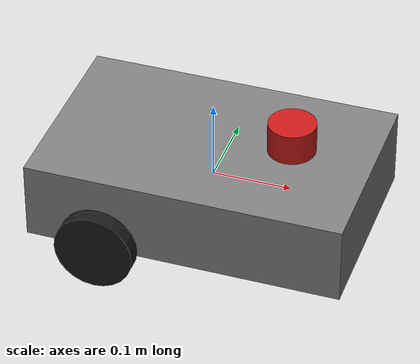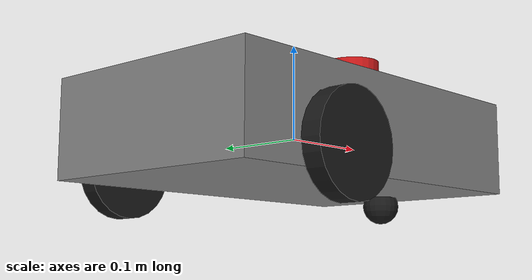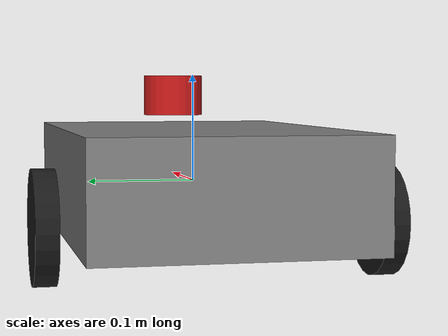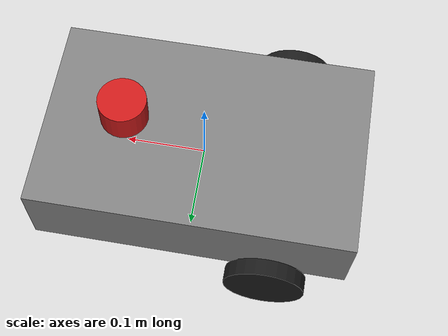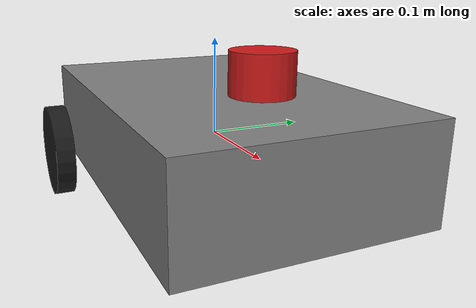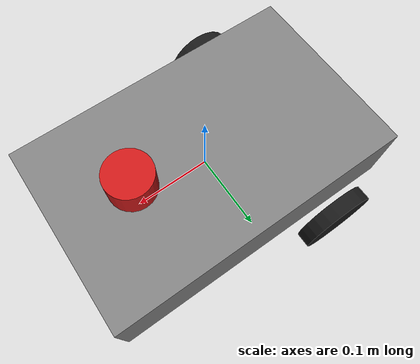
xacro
<?xml version="1.0"?>
<robot xmlns:xacro="http://www.ros.org/wiki/xacro" name="telebot">

  <!-- geometry constants in one place so wheel_separation below never drifts from the joints -->
  <xacro:property name="wheel_radius" value="0.05"/>
  <xacro:property name="wheel_width"  value="0.02"/>
  <xacro:property name="wheel_sep"    value="0.30"/>
  <xacro:property name="body_len"     value="0.40"/>
  <xacro:property name="body_wid"     value="0.25"/>
  <xacro:property name="body_hgt"     value="0.10"/>

  <material name="grey"><color rgba="0.5 0.5 0.5 1"/></material>
  <material name="black"><color rgba="0.1 0.1 0.1 1"/></material>
  <material name="red"><color rgba="0.8 0.1 0.1 1"/></material>

  <!-- ===================== base ===================== -->
  <link name="base_link">
    <visual>
      <geometry><box size="${body_len} ${body_wid} ${body_hgt}"/></geometry>
      <material name="grey"/>
    </visual>
    <collision>
      <geometry><box size="${body_len} ${body_wid} ${body_hgt}"/></geometry>
    </collision>
    <inertial>
      <mass value="3.0"/>
      <!-- box inertia, close enough for a sim chassis -->
      <inertia ixx="0.018" ixy="0" ixz="0" iyy="0.043" iyz="0" izz="0.055"/>
    </inertial>
  </link>

  <!-- ===================== wheels ===================== -->
  <xacro:macro name="wheel" params="name y_off">
    <link name="${name}_wheel_link">
      <visual>
        <geometry><cylinder radius="${wheel_radius}" length="${wheel_width}"/></geometry>
        <material name="black"/>
      </visual>
      <collision>
        <geometry><cylinder radius="${wheel_radius}" length="${wheel_width}"/></geometry>
      </collision>
      <inertial>
        <mass value="0.3"/>
        <inertia ixx="0.0002" ixy="0" ixz="0" iyy="0.0002" iyz="0" izz="0.0004"/>
      </inertial>
    </link>
    <joint name="${name}_wheel_joint" type="continuous">
      <parent link="base_link"/>
      <child link="${name}_wheel_link"/>
      <!-- wheels sit behind center; caster in front carries the rest -->
      <origin xyz="-0.1 ${y_off} -0.03" rpy="-1.5708 0 0"/>
      <axis xyz="0 0 1"/>
    </joint>
  </xacro:macro>

  <xacro:wheel name="left"  y_off="${ wheel_sep/2}"/>
  <xacro:wheel name="right" y_off="${-wheel_sep/2}"/>

  <!-- ===================== caster ===================== -->
  <link name="caster_link">
    <visual>
      <geometry><sphere radius="0.02"/></geometry>
      <material name="black"/>
    </visual>
    <collision>
      <geometry><sphere radius="0.02"/></geometry>
    </collision>
    <inertial>
      <mass value="0.1"/>
      <inertia ixx="0.0001" ixy="0" ixz="0" iyy="0.0001" iyz="0" izz="0.0001"/>
    </inertial>
  </link>
  <joint name="caster_joint" type="fixed">
    <parent link="base_link"/>
    <child link="caster_link"/>
    <origin xyz="0.15 0 -0.06"/>
  </joint>
  <!-- frictionless caster so it slides instead of fighting the diff drive -->
  <gazebo reference="caster_link">
    <mu1>0.0</mu1>
    <mu2>0.0</mu2>
  </gazebo>

  <!-- ===================== lidar ===================== -->
  <link name="lidar_link">
    <visual>
      <geometry><cylinder radius="0.03" length="0.04"/></geometry>
      <material name="red"/>
    </visual>
    <collision>
      <geometry><cylinder radius="0.03" length="0.04"/></geometry>
    </collision>
    <inertial>
      <mass value="0.1"/>
      <inertia ixx="0.0001" ixy="0" ixz="0" iyy="0.0001" iyz="0" izz="0.0001"/>
    </inertial>
  </link>
  <joint name="lidar_joint" type="fixed">
    <parent link="base_link"/>
    <child link="lidar_link"/>
    <origin xyz="0.1 0 0.08"/>
  </joint>

  <gazebo reference="lidar_link">
    <sensor name="lidar" type="ray">
      <always_on>true</always_on>
      <visualize>true</visualize>
      <update_rate>10</update_rate>
      <ray>
        <scan>
          <horizontal>
            <samples>360</samples>
            <resolution>1.0</resolution>
            <min_angle>-3.14159</min_angle>
            <max_angle>3.14159</max_angle>
          </horizontal>
        </scan>
        <range>
          <min>0.12</min>
          <max>8.0</max>
          <resolution>0.01</resolution>
        </range>
      </ray>
      <plugin name="lidar_plugin" filename="libgazebo_ros_ray_sensor.so">
        <ros>
          <!-- plugin publishes on ~/out by default; remap to the conventional /scan -->
          <remapping>~/out:=scan</remapping>
        </ros>
        <output_type>sensor_msgs/LaserScan</output_type>
        <!-- must match the URDF link name or RViz shows the scan in the wrong frame -->
        <frame_name>lidar_link</frame_name>
      </plugin>
    </sensor>
  </gazebo>

  <!-- ===================== diff drive plugin ===================== -->
  <gazebo>
    <plugin name="diff_drive" filename="libgazebo_ros_diff_drive.so">
      <left_joint>left_wheel_joint</left_joint>
      <right_joint>right_wheel_joint</right_joint>
      <wheel_separation>${wheel_sep}</wheel_separation>
      <wheel_diameter>${2*wheel_radius}</wheel_diameter>
      <max_wheel_torque>20</max_wheel_torque>
      <max_wheel_acceleration>1.0</max_wheel_acceleration>
      <command_topic>cmd_vel</command_topic>
      <publish_odom>true</publish_odom>
      <!-- odom->base_link TF comes from here; robot_state_publisher only does the static tree -->
      <publish_odom_tf>true</publish_odom_tf>
      <publish_wheel_tf>true</publish_wheel_tf>
      <odometry_topic>odom</odometry_topic>
      <odometry_frame>odom</odometry_frame>
      <robot_base_frame>base_link</robot_base_frame>
    </plugin>
  </gazebo>

</robot>
